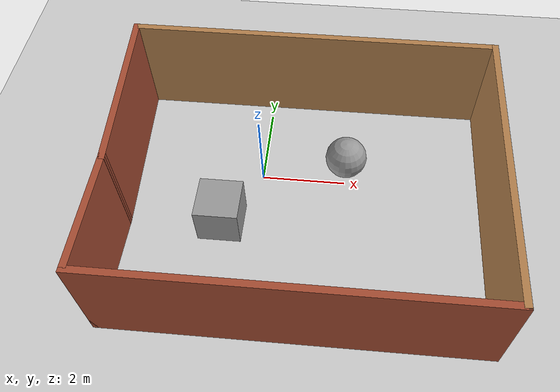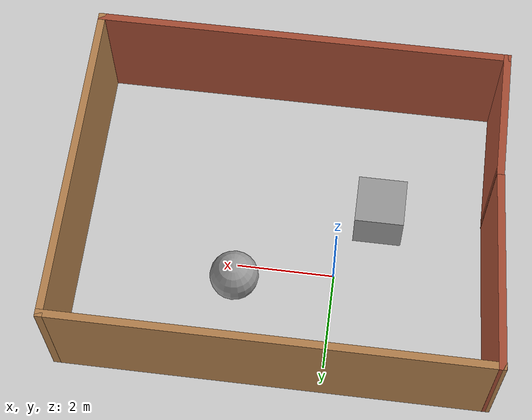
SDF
<sdf version="1.7">
 <world name="default">
  <light name="sun" type="directional">
   <pose>0 0 10 0 -0 0</pose>
   <diffuse>0.8 0.8 0.8 1</diffuse>
   <specular>0.2 0.2 0.2 1</specular>
   <attenuation>
    <range>1000</range>
    <constant>0.9</constant>
    <linear>0.01</linear>
    <quadratic>0.001</quadratic>
   </attenuation>
   <direction>-0.5 0.1 -0.9</direction>
   <spot><inner_angle>0</inner_angle><outer_angle>0</outer_angle><falloff>0</falloff></spot>
  </light>
  <model name="ground_plane">
   <static>1</static>
   <link name="link">
    <collision name="collision">
     <geometry><plane><normal>0 0 1</normal><size>100 100</size></plane></geometry>
     <surface><friction><ode><mu>100</mu><mu2>50</mu2></ode></friction></surface>
    </collision>
    <visual name="visual">
     <cast_shadows>0</cast_shadows>
     <geometry><plane><normal>0 0 1</normal><size>100 100</size></plane></geometry>
     <material>
      <script><uri>file://media/materials/scripts/gazebo.material</uri><name>Gazebo/Grey</name></script>
     </material>
    </visual>
   </link>
  </model>
  <gravity>0 0 -9.8</gravity>
  <magnetic_field>6e-06 2.3e-05 -4.2e-05</magnetic_field>
  <atmosphere type="adiabatic"/>
  <physics type="ode">
   <max_step_size>0.001</max_step_size>
   <real_time_factor>1</real_time_factor>
   <real_time_update_rate>1000</real_time_update_rate>
  </physics>
  <scene><ambient>0.4 0.4 0.4 1</ambient><background>0.7 0.7 0.7 1</background><shadows>1</shadows></scene>
  <audio><device>default</device></audio>
  <spherical_coordinates>
   <surface_model>EARTH_WGS84</surface_model>
   <latitude_deg>0</latitude_deg>
   <longitude_deg>0</longitude_deg>
   <elevation>0</elevation>
   <heading_deg>0</heading_deg>
  </spherical_coordinates>
  <model name="closedenvironment">
   <pose>1.01773 -0.847734 0 0 -0 0</pose>
   <link name="Wall_0">
    <collision name="Wall_0_Collision">
     <geometry><box><size>2.75 0.15 2.5</size></box></geometry>
     <pose>0 0 1.25 0 -0 0</pose>
    </collision>
    <visual name="Wall_0_Visual">
     <pose>0 0 1.25 0 -0 0</pose>
     <geometry><box><size>2.75 0.15 2.5</size></box></geometry>
     <material>
      <script><uri>file://media/materials/scripts/gazebo.material</uri><name>Gazebo/Bricks</name></script>
      <ambient>1 1 1 1</ambient>
     </material>
     <meta><layer>0</layer></meta>
    </visual>
    <pose>-4.04773 -2.00227 0 0 -0 -1.5708</pose>
   </link>
   <link name="Wall_1">
    <collision name="Wall_1_Collision">
     <geometry><box><size>8.5 0.15 2.5</size></box></geometry>
     <pose>0 0 1.25 0 -0 0</pose>
    </collision>
    <visual name="Wall_1_Visual">
     <pose>0 0 1.25 0 -0 0</pose>
     <geometry><box><size>8.5 0.15 2.5</size></box></geometry>
     <material>
      <script><uri>file://media/materials/scripts/gazebo.material</uri><name>Gazebo/Bricks</name></script>
      <ambient>1 1 1 1</ambient>
     </material>
     <meta><layer>0</layer></meta>
    </visual>
    <pose>0.127266 -3.30227 0 0 -0 0</pose>
   </link>
   <link name="Wall_2">
    <collision name="Wall_2_Collision">
     <geometry><box><size>6.75 0.15 2.5</size></box></geometry>
     <pose>0 0 1.25 0 -0 0</pose>
    </collision>
    <visual name="Wall_2_Visual">
     <pose>0 0 1.25 0 -0 0</pose>
     <geometry><box><size>6.75 0.15 2.5</size></box></geometry>
     <material>
      <script><uri>file://media/materials/scripts/gazebo.material</uri><name>Gazebo/Wood</name></script>
      <ambient>1 1 1 1</ambient>
     </material>
     <meta><layer>0</layer></meta>
    </visual>
    <pose>4.30227 -0.002266 0 0 -0 1.5708</pose>
   </link>
   <link name="Wall_3">
    <collision name="Wall_3_Collision">
     <geometry><box><size>8.75 0.15 2.5</size></box></geometry>
     <pose>0 0 1.25 0 -0 0</pose>
    </collision>
    <visual name="Wall_3_Visual">
     <pose>0 0 1.25 0 -0 0</pose>
     <geometry><box><size>8.75 0.15 2.5</size></box></geometry>
     <material>
      <script><uri>file://media/materials/scripts/gazebo.material</uri><name>Gazebo/Wood</name></script>
      <ambient>1 1 1 1</ambient>
     </material>
     <meta><layer>0</layer></meta>
    </visual>
    <pose>0.002266 3.29773 0 0 -0 3.14159</pose>
   </link>
   <link name="Wall_4">
    <collision name="Wall_4_Collision">
     <geometry><box><size>4.1578 0.15 2.5</size></box></geometry>
     <pose>0 0 1.25 0 -0 0</pose>
    </collision>
    <visual name="Wall_4_Visual">
     <pose>0 0 1.25 0 -0 0</pose>
     <geometry><box><size>4.1578 0.15 2.5</size></box></geometry>
     <material>
      <script><uri>file://media/materials/scripts/gazebo.material</uri><name>Gazebo/Bricks</name></script>
      <ambient>1 1 1 1</ambient>
     </material>
     <meta><layer>0</layer></meta>
    </visual>
    <pose>-4.17273 1.29773 0 0 -0 -1.50838</pose>
   </link>
   <static>1</static>
  </model>
  <model name="unit_box">
   <pose>-0.804258 -1.37124 0.499995 0 1e-05 0</pose>
   <link name="link">
    <inertial>
     <mass>1</mass>
     <inertia>
      <ixx>0.166667</ixx>
      <ixy>0</ixy>
      <ixz>0</ixz>
      <iyy>0.166667</iyy>
      <iyz>0</iyz>
      <izz>0.166667</izz>
     </inertia>
    </inertial>
    <collision name="collision"><geometry><box><size>1 1 1</size></box></geometry></collision>
    <visual name="visual">
     <geometry><box><size>1 1 1</size></box></geometry>
     <material>
      <script><name>Gazebo/Grey</name><uri>file://media/materials/scripts/gazebo.material</uri></script>
     </material>
    </visual>
   </link>
  </model>
  <model name="unit_sphere">
   <pose>2.00522 0.42127 0.5 0 -0 0</pose>
   <link name="link">
    <inertial>
     <mass>1</mass>
     <inertia><ixx>0.1</ixx><ixy>0</ixy><ixz>0</ixz><iyy>0.1</iyy><iyz>0</iyz><izz>0.1</izz></inertia>
    </inertial>
    <collision name="collision"><geometry><sphere><radius>0.5</radius></sphere></geometry></collision>
    <visual name="visual">
     <geometry><sphere><radius>0.5</radius></sphere></geometry>
     <material>
      <script><name>Gazebo/Grey</name><uri>file://media/materials/scripts/gazebo.material</uri></script>
     </material>
    </visual>
   </link>
  </model>
 </world>
</sdf>
